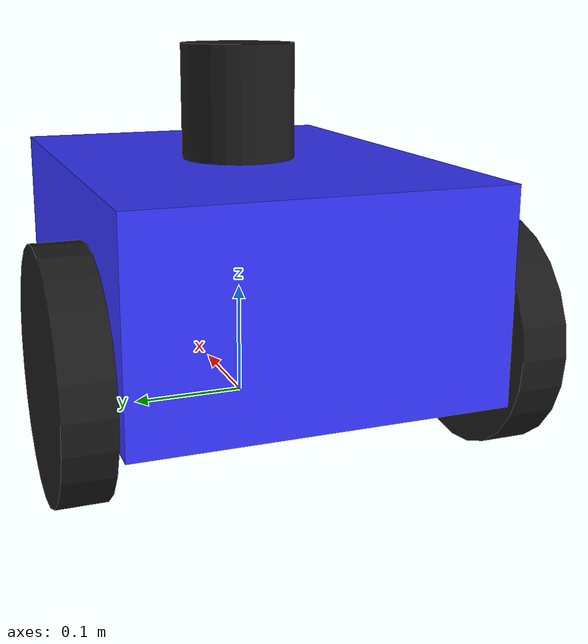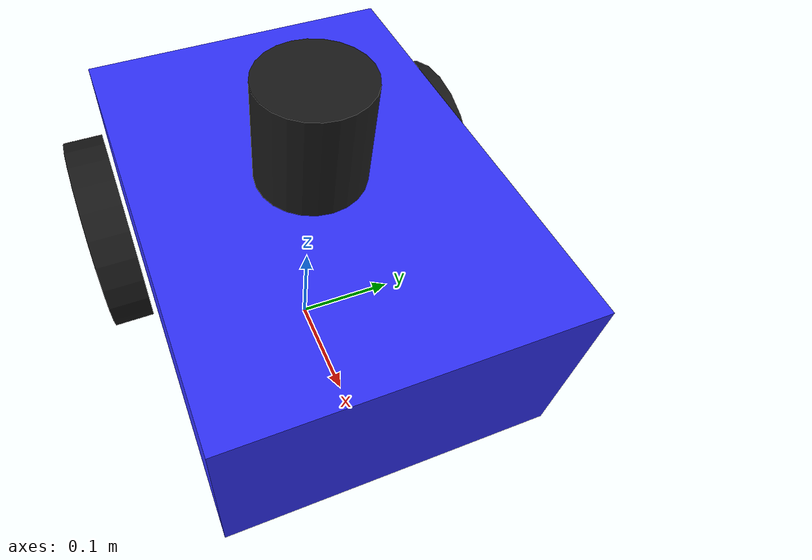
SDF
<?xml version="1.0"?>
<sdf version="1.9">
  <model name="smartmbot">
    <pose>0 0 0.13 0 0 0</pose>

    <link name="base_link">
      <inertial>
        <mass>10.0</mass>
        <inertia>
          <ixx>0.4</ixx>
          <ixy>0.0</ixy>
          <ixz>0.0</ixz>
          <iyy>0.4</iyy>
          <iyz>0.0</iyz>
          <izz>0.2</izz>
        </inertia>
      </inertial>

      <visual name="base_visual">
        <geometry>
          <box>
            <size>0.42 0.31 0.18</size>
          </box>
        </geometry>
        <material>
          <ambient>0.2 0.2 1 1</ambient>
          <diffuse>0.2 0.2 1 1</diffuse>
        </material>
      </visual>

      <collision name="base_collision">
        <geometry>
          <box>
            <size>0.42 0.31 0.18</size>
          </box>
        </geometry>
      </collision>
    </link>

    <link name="left_wheel">
      <pose relative_to="base_link">-0.12 0.18 -0.05 -1.5708 0 0</pose>
      <inertial>
        <mass>1.0</mass>
        <inertia>
          <ixx>0.1</ixx>
          <ixy>0.0</ixy>
          <ixz>0.0</ixz>
          <iyy>0.1</iyy>
          <iyz>0.0</iyz>
          <izz>0.1</izz>
        </inertia>
      </inertial>

      <visual name="left_wheel_visual">
        <geometry>
          <cylinder>
            <radius>0.10</radius>
            <length>0.04</length>
          </cylinder>
        </geometry>
        <material>
          <ambient>0.1 0.1 0.1 1</ambient>
          <diffuse>0.1 0.1 0.1 1</diffuse>
        </material>
      </visual>

      <collision name="left_wheel_collision">
        <geometry>
          <cylinder>
            <radius>0.10</radius>
            <length>0.04</length>
          </cylinder>
        </geometry>
      </collision>
    </link>

    <link name="right_wheel">
      <pose relative_to="base_link">-0.12 -0.18 -0.05 -1.5708 0 0</pose>
      <inertial>
        <mass>1.0</mass>
        <inertia>
          <ixx>0.1</ixx>
          <ixy>0.0</ixy>
          <ixz>0.0</ixz>
          <iyy>0.1</iyy>
          <iyz>0.0</iyz>
          <izz>0.1</izz>
        </inertia>
      </inertial>

      <visual name="right_wheel_visual">
        <geometry>
          <cylinder>
            <radius>0.10</radius>
            <length>0.04</length>
          </cylinder>
        </geometry>
        <material>
          <ambient>0.1 0.1 0.1 1</ambient>
          <diffuse>0.1 0.1 0.1 1</diffuse>
        </material>
      </visual>

      <collision name="right_wheel_collision">
        <geometry>
          <cylinder>
            <radius>0.10</radius>
            <length>0.04</length>
          </cylinder>
        </geometry>
      </collision>
    </link>

    <link name="caster">
      <pose relative_to="base_link">0.14 0 -0.05 0 0 0</pose>
      <inertial>
        <mass>0.5</mass>
        <inertia>
          <ixx>0.1</ixx>
          <ixy>0.0</ixy>
          <ixz>0.0</ixz>
          <iyy>0.1</iyy>
          <iyz>0.0</iyz>
          <izz>0.1</izz>
        </inertia>
      </inertial>

      <visual name="caster_visual">
        <geometry>
          <sphere>
            <radius>0.05</radius>
          </sphere>
        </geometry>
        <material>
          <ambient>1 1 1 1</ambient>
          <diffuse>1 1 1 1</diffuse>
        </material>
      </visual>

      <collision name="caster_collision">
        <geometry>
          <sphere>
            <radius>0.05</radius>
          </sphere>
        </geometry>
      </collision>
    </link>

    <link name="lidar_link">
      <pose relative_to="base_link">0 0 0.14 0 0 0</pose>
      <inertial>
        <mass>0.2</mass>
        <inertia>
          <ixx>0.01</ixx>
          <ixy>0.0</ixy>
          <ixz>0.0</ixz>
          <iyy>0.01</iyy>
          <iyz>0.0</iyz>
          <izz>0.01</izz>
        </inertia>
      </inertial>

      <visual name="lidar_visual">
        <geometry>
          <cylinder>
            <radius>0.05</radius>
            <length>0.1</length>
          </cylinder>
        </geometry>
        <material>
          <ambient>0.1 0.1 0.1 1</ambient>
          <diffuse>0.1 0.1 0.1 1</diffuse>
        </material>
      </visual>

      <collision name="lidar_collision">
        <geometry>
          <cylinder>
            <radius>0.05</radius>
            <length>0.1</length>
          </cylinder>
        </geometry>
      </collision>

      <sensor name="lidar" type="gpu_lidar">
        <topic>scan</topic>
        <update_rate>10</update_rate>
        <lidar>
          <scan>
            <horizontal>
              <samples>360</samples>
              <resolution>1</resolution>
              <min_angle>-3.14159</min_angle>
              <max_angle>3.14159</max_angle>
            </horizontal>
            <vertical>
              <samples>1</samples>
              <resolution>1</resolution>
              <min_angle>0</min_angle>
              <max_angle>0</max_angle>
            </vertical>
          </scan>
          <range>
            <min>0.1</min>
            <max>30.0</max>
            <resolution>0.01</resolution>
          </range>
        </lidar>
        <alwaysOn>1</alwaysOn>
        <visualize>true</visualize>
      </sensor>
    </link>

    <!-- Joints -->
    <joint name="left_wheel_joint" type="revolute">
      <parent>base_link</parent>
      <child>left_wheel</child>
      <axis>
        <xyz>0 0 1</xyz>
      </axis>
    </joint>

    <joint name="right_wheel_joint" type="revolute">
      <parent>base_link</parent>
      <child>right_wheel</child>
      <axis>
        <xyz>0 0 1</xyz>
      </axis>
    </joint>

    <joint name="caster_joint" type="fixed">
      <parent>base_link</parent>
      <child>caster</child>
    </joint>

    <joint name="lidar_joint" type="fixed">
      <parent>base_link</parent>
      <child>lidar_link</child>
    </joint>

    <!-- Differential drive plugin -->
    <plugin filename="gz-sim-diff-drive-system" name="gz::sim::systems::DiffDrive">
      <left_joint>left_wheel_joint</left_joint>
      <right_joint>right_wheel_joint</right_joint>
      <wheel_separation>0.36</wheel_separation>
      <wheel_radius>0.10</wheel_radius>
      <odom_publish_frequency>1</odom_publish_frequency>
      <topic>cmd_vel</topic>
    </plugin>

    <!-- Joint state publisher -->
    <plugin filename="gz-sim-joint-state-publisher-system" name="gz::sim::systems::JointStatePublisher">
    </plugin>

  </model>
</sdf>
